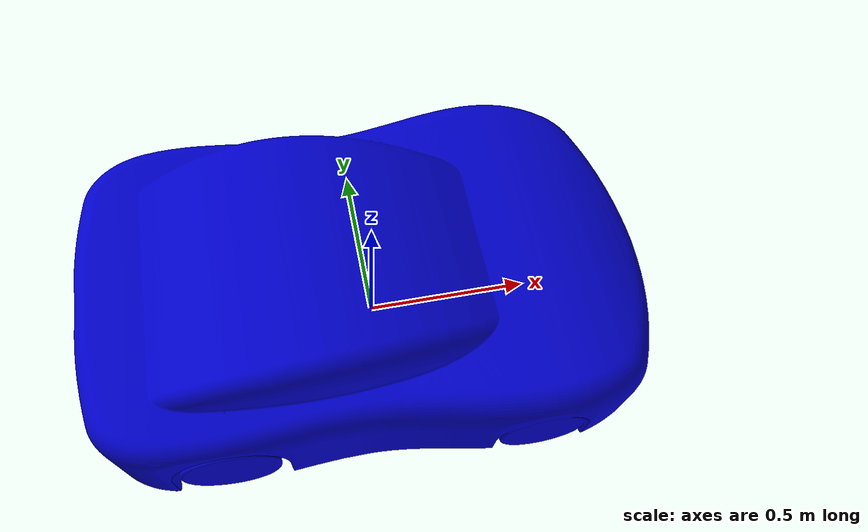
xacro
<?xml version="1.0"?>
<robot xmlns:xacro="http://www.ros.org/wiki/xacro" name="car">
    <link name="base">
	<inertial>
	    <origin xyz="0 0 0" rpy="0 0 0"/>
	    <mass value="15"/>
	    <inertia ixx="${1/12*15*3*0.17^2+1/12*5*3*0.08^2}" ixy="0.0" ixz="0.0" iyy="${1/12*15*3*0.17^2+1/12*5*3*0.08^2}" iyz="0.0" izz="${1/2*15*0.17^2}"/>
	</inertial>
	<visual>
	    <origin xyz="0 0 0" rpy="0 0 0"/>
	    <geometry>
		<mesh filename="file://$(find robot_controller)/model/car.dae" scale="0.012 0.012 0.012"/>
	    </geometry>
	    <material name="blue">
		<color rgba="0 0 .8 1"/>
	    </material>
	</visual>
    </link>
</robot>
